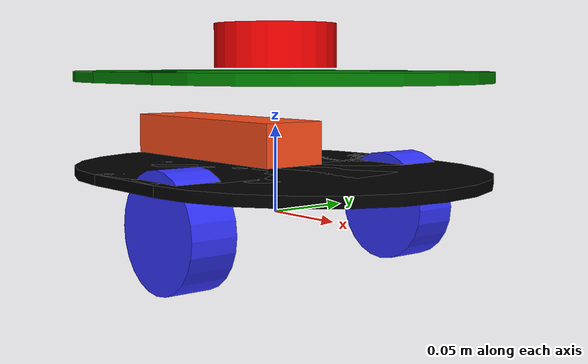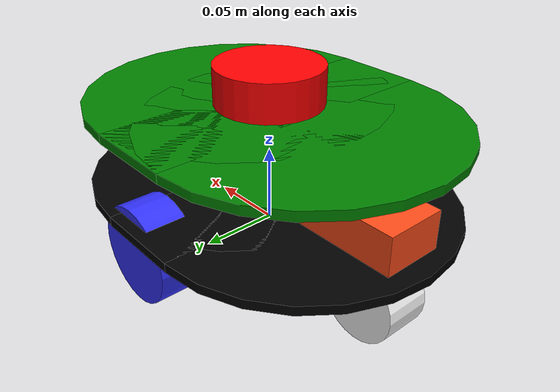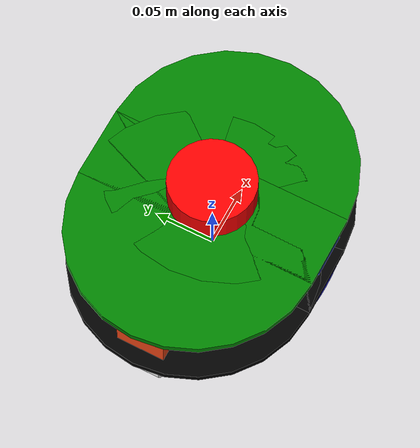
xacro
<?xml version="1.0"?>
<robot xmlns:xacro="http://www.ros.org/wiki/xacro"  name="robot">

    <xacro:include filename="edubot_core.xacro" />

    <xacro:include filename="gazebo_control.xacro" />
    <xacro:include filename="lidar.xacro" />

</robot>

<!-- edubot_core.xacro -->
<robot xmlns:xacro="http://www.ros.org/wiki/xacro" >

    <xacro:include filename="inertial_macros.xacro"/>

    <material name="white">
        <color rgba="1 1 1 1" />
    </material>

    <material name="orange">
        <color rgba="1 0.3 0.1 1" />
    </material>

    <material name="blue">
        <color rgba="0.2 0.2 1 1" />
    </material>

    <material name="green">
        <color rgba="0 0.5 0 1" />
    </material>

    <material name="black">
        <color rgba="0 0 0 1" />
    </material>

    <material name="red">
        <color rgba="1 0 0 1" />
    </material>

    <!-- BASE LINK  -->

    <link name="base_link">

    </link>

    <!-- CHASSIS PART 1 LINK  -->

    <joint name="chassis_part1_joint" type="fixed">
        <parent link="base_link"/>
        <child link="chassis_part1"/>
        <origin xyz="-0.03 0 0"/>
    </joint>

    <link name="chassis_part1">
        <visual>
            <origin xyz="0.03 0 0.023"/>
            <geometry>
                <box size="0.06 0.2 0.006"/>
            </geometry>
            <material name="black"/>
        </visual>
        <collision>
            <origin xyz="0.03 0 0.023"/>
            <geometry>
                <box size="0.06 0.2 0.006"/>
            </geometry>
        </collision>
        <xacro:inertial_box mass="0.1" x="0.03" y="0.2" z="0.023">
            <origin xyz="0.03 0 0.003" rpy="0 0 0"/>
        </xacro:inertial_box>
    </link>

    <gazebo reference="chassis_part1">
        <material>Gazebo/Black</material>
    </gazebo>

    <!-- CHASSIS PART 2 LINK  -->

    <joint name="chassis_part2_joint" type="fixed">
        <parent link="chassis_part1"/>
        <child link="chassis_part2"/>
        <origin xyz="0 0 0.023" rpy="0 0 0"/>
        <axis xyz="0 0 0"/>
    </joint>

    <link name="chassis_part2">
        <visual>
            <geometry>
                <cylinder radius="0.1" length="0.006"/>
            </geometry>
            <material name="black"/>
        </visual>
        <collision>
            <geometry>
                <cylinder radius="0.1" length="0.006"/>
            </geometry>
        </collision>
        <xacro:inertial_cylinder mass="0.05" length="0.006" radius="0.1">
            <origin xyz="0 0 0.023" rpy="0 0 0"/>
        </xacro:inertial_cylinder>
    </link>

    <gazebo reference="chassis_part2">
        <material>Gazebo/Black</material>
    </gazebo>

    <!-- CHASSIS PART 3 LINK  -->

    <joint name="chassis_part3_joint" type="fixed">
        <parent link="chassis_part1"/>
        <child link="chassis_part3"/>
        <origin xyz="0.06 0 0.023" rpy="0 0 0"/>
        <axis xyz="0 0 0"/>
    </joint>

    <link name="chassis_part3">
        <visual>
            <geometry>
                <cylinder radius="0.1" length="0.006"/>
            </geometry>
            <material name="black"/>
        </visual>
        <collision>
            <geometry>
                <cylinder radius="0.1" length="0.006"/>
            </geometry>
        </collision>
        <xacro:inertial_cylinder mass="0.05" length="0.006" radius="0.1">
            <origin xyz="0.06 0 0.023" rpy="0 0 0"/>
        </xacro:inertial_cylinder>
    </link>

    <gazebo reference="chassis_part3">
        <material>Gazebo/Black</material>
    </gazebo>

    <!-- PCB PARTE 1 LINK  -->

    <joint name="pcb_part1_joint" type="fixed">
        <parent link="base_link"/>
        <child link="pcb_part1"/>
        <origin xyz="-0.03 0 0"/>
    </joint>

    <link name="pcb_part1">
        <visual>
            <origin xyz="0.03 0 0.078"/>
            <geometry>
                <box size="0.06 0.2 0.006"/>
            </geometry>
            <material name="green"/>
        </visual>
        <collision>
            <origin xyz="0.03 0 0.078"/>
            <geometry>
                <box size="0.06 0.2 0.006"/>
            </geometry>
        </collision>
        <xacro:inertial_box mass="0.1" x="0.03" y="0.2" z="0.078">
            <origin xyz="0.03 0 0.003" rpy="0 0 0"/>
        </xacro:inertial_box>
    </link>

    <gazebo reference="pcb_part1">
        <material>Gazebo/Green</material>
    </gazebo>

    <!-- PCB PART 2 LINK  -->

    <joint name="pcb_part2_joint" type="fixed">
        <parent link="chassis_part1"/>
        <child link="pcb_part2"/>
        <origin xyz="0 0 0.078" rpy="0 0 0"/>
        <axis xyz="0 0 0"/>
    </joint>

    <link name="pcb_part2">
        <visual>
            <geometry>
                <cylinder radius="0.1" length="0.006"/>
            </geometry>
            <material name="green"/>
        </visual>
        <collision>
            <geometry>
                <cylinder radius="0.1" length="0.006"/>
            </geometry>
        </collision>
        <xacro:inertial_cylinder mass="0.05" length="0.006" radius="0.1">
            <origin xyz="0 0 0.078" rpy="0 0 0"/>
        </xacro:inertial_cylinder>
    </link>

    <gazebo reference="pcb_part2">
        <material>Gazebo/Green</material>
    </gazebo>

    <!-- PCB PART 3 LINK  -->

    <joint name="pcb_part3_joint" type="fixed">
        <parent link="chassis_part1"/>
        <child link="pcb_part3"/>
        <origin xyz="0.06 0 0.078" rpy="0 0 0"/>
        <axis xyz="0 0 0"/>
    </joint>

    <link name="pcb_part3">
        <visual>
            <geometry>
                <cylinder radius="0.1" length="0.006"/>
            </geometry>
            <material name="green"/>
        </visual>
        <collision>
            <geometry>
                <cylinder radius="0.1" length="0.006"/>
            </geometry>
        </collision>
        <xacro:inertial_cylinder mass="0.05" length="0.006" radius="0.1">
            <origin xyz="0.06 0 0.078" rpy="0 0 0"/>
        </xacro:inertial_cylinder>
    </link>

    <gazebo reference="pcb_part3">
        <material>Gazebo/Green</material>
    </gazebo>

    <!-- LEFT WHEEL LINK  -->

    <joint name="left_wheel_joint" type="continuous">
        <parent link="base_link"/>
        <child link="left_wheel"/>
        <origin xyz="0.02 0.079 0" rpy="-${pi/2} 0 0"/>
        <axis xyz="0 0 1"/>
    </joint>

    <link name="left_wheel">
        <visual>
            <geometry>
                <cylinder radius="0.03218" length="0.02683"/>
            </geometry>
            <material name="blue"/>
        </visual>
        <collision>
            <geometry>
                <cylinder radius="0.03218" length="0.02683"/>
            </geometry>
        </collision>
        <xacro:inertial_cylinder mass="0.1" length="0.02683" radius="0.03218">
            <origin xyz="0 0 0" rpy="0 0 0"/>
        </xacro:inertial_cylinder>
    </link>

    <gazebo reference="left_wheel">
        <material>Gazebo/Blue</material>
    </gazebo>

    <!-- RIGHT WHEEL LINK  -->

    <joint name="right_wheel_joint" type="continuous">
        <parent link="base_link"/>
        <child link="right_wheel"/>
        <origin xyz="0.02 -0.079 0" rpy="${pi/2} 0 0"/>
        <axis xyz="0 0 -1"/>
    </joint>

    <link name="right_wheel">
        <visual>
            <geometry>
                <cylinder radius="0.03218" length="0.02683"/>
            </geometry>
            <material name="blue"/>
        </visual>
        <collision>
            <geometry>
                <cylinder radius="0.03218" length="0.02683"/>
            </geometry>
        </collision>
        <xacro:inertial_cylinder mass="0.1" length="0.02683" radius="0.03218">
            <origin xyz="0 0 0" rpy="0 0 0"/>
        </xacro:inertial_cylinder>
    </link>

    <gazebo reference="right_wheel">
        <material>Gazebo/Blue</material>
    </gazebo>

    <!-- CASTER WHEEL LINK  -->

    <joint name="caster_wheel_joint" type="fixed">
        <parent link="chassis_part1"/>
        <child link="caster_wheel"/>
        <origin xyz="-0.063 0 -0.00718" rpy="${pi/2} 0 0"/>
        <axis xyz="0 0 -1"/>
    </joint>

    <link name="caster_wheel">
        <visual>
            <geometry>
                <cylinder radius="0.0255" length="0.03"/>
            </geometry>
            <material name="white"/>
        </visual>
        <collision>
            <geometry>
                <cylinder radius="0.0255" length="0.03"/>
            </geometry>
        </collision>
        <xacro:inertial_cylinder mass="0.05" length="0.03" radius="0.0255">
            <origin xyz="0 0 0" rpy="0 0 0"/>
        </xacro:inertial_cylinder>
    </link>

    <gazebo reference="caster_wheel">
        <material>Gazebo/White</material>
        <mu1 value="0.001" />
        <mu2 value="0.001" />
    </gazebo>

        <!-- BATTERY LINK  -->

    <joint name="battery_joint" type="fixed">
        <parent link="chassis_part1"/>
        <child link="battery"/>
        <origin xyz="-0.02 0 0.04"/>
    </joint>

    <link name="battery">
        <visual>
            <origin xyz="0 0 0"/>
            <geometry>
                <box size="0.135 0.04 0.025"/>
            </geometry>
            <material name="orange"/>
        </visual>
        <collision>
            <origin xyz="0 0 0"/>
            <geometry>
                <box size="0.135 0.04 0.025"/>
            </geometry>
        </collision>
        <xacro:inertial_box mass="0.5" x="0.135" y="0.04" z="0.025">
            <origin xyz="0 0 0" rpy="0 0 0"/>
        </xacro:inertial_box>
    </link>

    <gazebo reference="battery">
        <material>Gazebo/Orange</material>
    </gazebo>
</robot>

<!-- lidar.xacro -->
<robot xmlns:xacro="http://www.ros.org/wiki/xacro" >

    <joint name="laser_joint" type="fixed">
        <parent link="chassis_part1"/>
        <child link="laser_frame"/>
        <origin xyz="0.03 0 0.0955" rpy="0 0 0"/>
    </joint>

    <link name="laser_frame">
        <visual>
            <geometry>
                <cylinder radius="0.035" length="0.025"/>
            </geometry>
            <material name="red"/>
        </visual>
        <collision>
            <geometry>
                <cylinder radius="0.05" length="0.04"/>
            </geometry>
        </collision>
        <xacro:inertial_cylinder mass="0.1" length="0.04" radius="0.05">
            <origin xyz="0 0 0.0955" rpy="0 0 0"/>
        </xacro:inertial_cylinder>
    </link>

    <gazebo reference="laser_frame">
        <material>Gazebo/Red</material>

        <sensor name="laser" type="ray">
            <pose> 0 0 0 0 0 0 </pose>
            <visualize>true</visualize>
            <update_rate>10</update_rate>
            <ray>
                <scan>
                    <horizontal>
                        <samples>360</samples>
                        <min_angle>-3.14</min_angle>
                        <max_angle>3.14</max_angle>
                    </horizontal>
                </scan>
                <range>
                    <min>0.3</min>
                    <max>12</max>
                </range>
            </ray>
            <plugin name="laser_controller" filename="libgazebo_ros_ray_sensor.so">
                <ros>
                    <argument>~/out:=scan</argument>
                </ros>
                <output_type>sensor_msgs/LaserScan</output_type>
                <frame_name>laser_frame</frame_name>
            </plugin>
        </sensor>
    </gazebo>
</robot>
